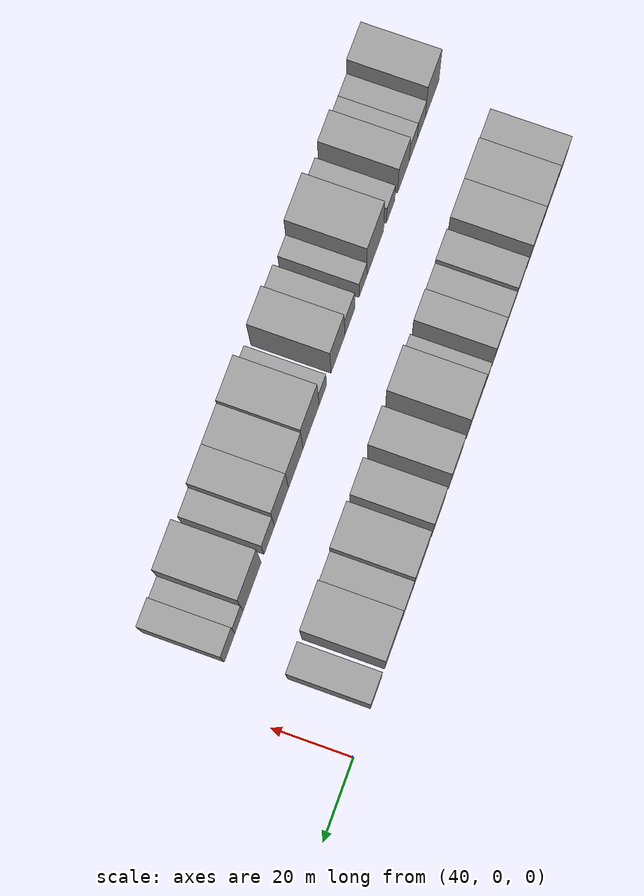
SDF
<sdf version="1.6">
 <world name="default">
  <model name="building_17">
   <static>1</static>
   <pose>50.0000 -145.6713 0 0.000000 0.000000 0.000000</pose>
   <link name="link">
    <pose>0 0 9.00 0 0 0</pose>
    <collision name="collision"><geometry><box><size>20.0000 8.4777 18.0000</size></box></geometry></collision>
    <visual name="visual">
     <cast_shadows>0</cast_shadows>
     <geometry><box><size>20.0000 8.4777 18.0000</size></box></geometry>
     <material>
      <script>
       <uri>model://grey_wall/materials/scripts</uri>
       <uri>model://grey_wall/materials/textures</uri>
       <name>vrc/grey_wall</name>
      </script>
     </material>
    </visual>
   </link>
  </model>
  <model name="building_18">
   <static>1</static>
   <pose>50.0000 -136.2820 0 0.000000 0.000000 0.000000</pose>
   <link name="link">
    <pose>0 0 10.50 0 0 0</pose>
    <collision name="collision"><geometry><box><size>20.0000 10.3009 21.0000</size></box></geometry></collision>
    <visual name="visual">
     <cast_shadows>0</cast_shadows>
     <geometry><box><size>20.0000 10.3009 21.0000</size></box></geometry>
     <material>
      <script>
       <uri>model://grey_wall/materials/scripts</uri>
       <uri>model://grey_wall/materials/textures</uri>
       <name>vrc/grey_wall</name>
      </script>
     </material>
    </visual>
   </link>
  </model>
  <model name="building_19">
   <static>1</static>
   <pose>50.0000 -126.2274 0 0.000000 0.000000 0.000000</pose>
   <link name="link">
    <pose>0 0 10.50 0 0 0</pose>
    <collision name="collision"><geometry><box><size>20.0000 9.8082 21.0000</size></box></geometry></collision>
    <visual name="visual">
     <cast_shadows>0</cast_shadows>
     <geometry><box><size>20.0000 9.8082 21.0000</size></box></geometry>
     <material>
      <script>
       <uri>model://grey_wall/materials/scripts</uri>
       <uri>model://grey_wall/materials/textures</uri>
       <name>vrc/grey_wall</name>
      </script>
     </material>
    </visual>
   </link>
  </model>
  <model name="building_20">
   <static>1</static>
   <pose>50.0000 -115.4698 0 0.000000 0.000000 0.000000</pose>
   <link name="link">
    <pose>0 0 9.00 0 0 0</pose>
    <collision name="collision"><geometry><box><size>20.0000 7.7070 18.0000</size></box></geometry></collision>
    <visual name="visual">
     <cast_shadows>0</cast_shadows>
     <geometry><box><size>20.0000 7.7070 18.0000</size></box></geometry>
     <material>
      <script>
       <uri>model://grey_wall/materials/scripts</uri>
       <uri>model://grey_wall/materials/textures</uri>
       <name>vrc/grey_wall</name>
      </script>
     </material>
    </visual>
   </link>
  </model>
  <model name="building_21">
   <static>1</static>
   <pose>50.0000 -107.9874 0 0.000000 0.000000 0.000000</pose>
   <link name="link">
    <pose>0 0 7.50 0 0 0</pose>
    <collision name="collision"><geometry><box><size>20.0000 7.2578 15.0000</size></box></geometry></collision>
    <visual name="visual">
     <cast_shadows>0</cast_shadows>
     <geometry><box><size>20.0000 7.2578 15.0000</size></box></geometry>
     <material>
      <script>
       <uri>model://grey_wall/materials/scripts</uri>
       <uri>model://grey_wall/materials/textures</uri>
       <name>vrc/grey_wall</name>
      </script>
     </material>
    </visual>
   </link>
  </model>
  <model name="building_22">
   <static>1</static>
   <pose>50.0000 -100.4647 0 0.000000 0.000000 0.000000</pose>
   <link name="link">
    <pose>0 0 9.00 0 0 0</pose>
    <collision name="collision"><geometry><box><size>20.0000 7.7876 18.0000</size></box></geometry></collision>
    <visual name="visual">
     <cast_shadows>0</cast_shadows>
     <geometry><box><size>20.0000 7.7876 18.0000</size></box></geometry>
     <material>
      <script>
       <uri>model://grey_wall/materials/scripts</uri>
       <uri>model://grey_wall/materials/textures</uri>
       <name>vrc/grey_wall</name>
      </script>
     </material>
    </visual>
   </link>
  </model>
  <model name="building_23">
   <static>1</static>
   <pose>50.0000 -91.7634 0 0.000000 0.000000 0.000000</pose>
   <link name="link">
    <pose>0 0 6.00 0 0 0</pose>
    <collision name="collision"><geometry><box><size>20.0000 5.6151 12.0000</size></box></geometry></collision>
    <visual name="visual">
     <cast_shadows>0</cast_shadows>
     <geometry><box><size>20.0000 5.6151 12.0000</size></box></geometry>
     <material>
      <script>
       <uri>model://grey_wall/materials/scripts</uri>
       <uri>model://grey_wall/materials/textures</uri>
       <name>vrc/grey_wall</name>
      </script>
     </material>
    </visual>
   </link>
  </model>
  <model name="building_24">
   <static>1</static>
   <pose>50.0000 -83.4513 0 0.000000 0.000000 0.000000</pose>
   <link name="link">
    <pose>0 0 12.00 0 0 0</pose>
    <collision name="collision"><geometry><box><size>20.0000 11.0090 24.0000</size></box></geometry></collision>
    <visual name="visual">
     <cast_shadows>0</cast_shadows>
     <geometry><box><size>20.0000 11.0090 24.0000</size></box></geometry>
     <material>
      <script>
       <uri>model://grey_wall/materials/scripts</uri>
       <uri>model://grey_wall/materials/textures</uri>
       <name>vrc/grey_wall</name>
      </script>
     </material>
    </visual>
   </link>
  </model>
  <model name="building_25">
   <static>1</static>
   <pose>50.0000 -70.2266 0 0.000000 0.000000 0.000000</pose>
   <link name="link">
    <pose>0 0 10.50 0 0 0</pose>
    <collision name="collision"><geometry><box><size>20.0000 9.4404 21.0000</size></box></geometry></collision>
    <visual name="visual">
     <cast_shadows>0</cast_shadows>
     <geometry><box><size>20.0000 9.4404 21.0000</size></box></geometry>
     <material>
      <script>
       <uri>model://grey_wall/materials/scripts</uri>
       <uri>model://grey_wall/materials/textures</uri>
       <name>vrc/grey_wall</name>
      </script>
     </material>
    </visual>
   </link>
  </model>
  <model name="building_26">
   <static>1</static>
   <pose>50.0000 -58.0610 0 0.000000 0.000000 0.000000</pose>
   <link name="link">
    <pose>0 0 10.50 0 0 0</pose>
    <collision name="collision"><geometry><box><size>20.0000 8.8907 21.0000</size></box></geometry></collision>
    <visual name="visual">
     <cast_shadows>0</cast_shadows>
     <geometry><box><size>20.0000 8.8907 21.0000</size></box></geometry>
     <material>
      <script>
       <uri>model://grey_wall/materials/scripts</uri>
       <uri>model://grey_wall/materials/textures</uri>
       <name>vrc/grey_wall</name>
      </script>
     </material>
    </visual>
   </link>
  </model>
  <model name="building_27">
   <static>1</static>
   <pose>50.0000 -46.1126 0 0.000000 0.000000 0.000000</pose>
   <link name="link">
    <pose>0 0 12.00 0 0 0</pose>
    <collision name="collision"><geometry><box><size>20.0000 11.0061 24.0000</size></box></geometry></collision>
    <visual name="visual">
     <cast_shadows>0</cast_shadows>
     <geometry><box><size>20.0000 11.0061 24.0000</size></box></geometry>
     <material>
      <script>
       <uri>model://grey_wall/materials/scripts</uri>
       <uri>model://grey_wall/materials/textures</uri>
       <name>vrc/grey_wall</name>
      </script>
     </material>
    </visual>
   </link>
  </model>
  <model name="building_28">
   <static>1</static>
   <pose>50.0000 -36.8444 0 0.000000 0.000000 0.000000</pose>
   <link name="link">
    <pose>0 0 9.00 0 0 0</pose>
    <collision name="collision"><geometry><box><size>20.0000 7.5302 18.0000</size></box></geometry></collision>
    <visual name="visual">
     <cast_shadows>0</cast_shadows>
     <geometry><box><size>20.0000 7.5302 18.0000</size></box></geometry>
     <material>
      <script>
       <uri>model://grey_wall/materials/scripts</uri>
       <uri>model://grey_wall/materials/textures</uri>
       <name>vrc/grey_wall</name>
      </script>
     </material>
    </visual>
   </link>
  </model>
  <model name="building_29">
   <static>1</static>
   <pose>50.0000 -27.2090 0 0.000000 0.000000 0.000000</pose>
   <link name="link">
    <pose>0 0 12.00 0 0 0</pose>
    <collision name="collision"><geometry><box><size>20.0000 11.7405 24.0000</size></box></geometry></collision>
    <visual name="visual">
     <cast_shadows>0</cast_shadows>
     <geometry><box><size>20.0000 11.7405 24.0000</size></box></geometry>
     <material>
      <script>
       <uri>model://grey_wall/materials/scripts</uri>
       <uri>model://grey_wall/materials/textures</uri>
       <name>vrc/grey_wall</name>
      </script>
     </material>
    </visual>
   </link>
  </model>
  <model name="building_30">
   <static>1</static>
   <pose>50.0000 -15.5463 0 0.000000 0.000000 0.000000</pose>
   <link name="link">
    <pose>0 0 9.00 0 0 0</pose>
    <collision name="collision"><geometry><box><size>20.0000 7.5850 18.0000</size></box></geometry></collision>
    <visual name="visual">
     <cast_shadows>0</cast_shadows>
     <geometry><box><size>20.0000 7.5850 18.0000</size></box></geometry>
     <material>
      <script>
       <uri>model://grey_wall/materials/scripts</uri>
       <uri>model://grey_wall/materials/textures</uri>
       <name>vrc/grey_wall</name>
      </script>
     </material>
    </visual>
   </link>
  </model>
  <model name="building_75">
   <static>1</static>
   <pose>85.0000 -153.7238 0 0.000000 0.000000 0.000000</pose>
   <link name="link">
    <pose>0 0 10.50 0 0 0</pose>
    <collision name="collision"><geometry><box><size>20.0000 9.7922 21.0000</size></box></geometry></collision>
    <visual name="visual">
     <cast_shadows>0</cast_shadows>
     <geometry><box><size>20.0000 9.7922 21.0000</size></box></geometry>
     <material>
      <script>
       <uri>model://grey_wall/materials/scripts</uri>
       <uri>model://grey_wall/materials/textures</uri>
       <name>vrc/grey_wall</name>
      </script>
     </material>
    </visual>
   </link>
  </model>
  <model name="building_76">
   <static>1</static>
   <pose>85.0000 -145.9030 0 0.000000 0.000000 0.000000</pose>
   <link name="link">
    <pose>0 0 6.00 0 0 0</pose>
    <collision name="collision"><geometry><box><size>20.0000 5.8493 12.0000</size></box></geometry></collision>
    <visual name="visual">
     <cast_shadows>0</cast_shadows>
     <geometry><box><size>20.0000 5.8493 12.0000</size></box></geometry>
     <material>
      <script>
       <uri>model://grey_wall/materials/scripts</uri>
       <uri>model://grey_wall/materials/textures</uri>
       <name>vrc/grey_wall</name>
      </script>
     </material>
    </visual>
   </link>
  </model>
  <model name="building_77">
   <static>1</static>
   <pose>85.0000 -140.0533 0 0.000000 0.000000 0.000000</pose>
   <link name="link">
    <pose>0 0 6.00 0 0 0</pose>
    <collision name="collision"><geometry><box><size>20.0000 5.8501 12.0000</size></box></geometry></collision>
    <visual name="visual">
     <cast_shadows>0</cast_shadows>
     <geometry><box><size>20.0000 5.8501 12.0000</size></box></geometry>
     <material>
      <script>
       <uri>model://grey_wall/materials/scripts</uri>
       <uri>model://grey_wall/materials/textures</uri>
       <name>vrc/grey_wall</name>
      </script>
     </material>
    </visual>
   </link>
  </model>
  <model name="building_78">
   <static>1</static>
   <pose>85.0000 -133.0357 0 0.000000 0.000000 0.000000</pose>
   <link name="link">
    <pose>0 0 9.00 0 0 0</pose>
    <collision name="collision"><geometry><box><size>20.0000 8.1851 18.0000</size></box></geometry></collision>
    <visual name="visual">
     <cast_shadows>0</cast_shadows>
     <geometry><box><size>20.0000 8.1851 18.0000</size></box></geometry>
     <material>
      <script>
       <uri>model://grey_wall/materials/scripts</uri>
       <uri>model://grey_wall/materials/textures</uri>
       <name>vrc/grey_wall</name>
      </script>
     </material>
    </visual>
   </link>
  </model>
  <model name="building_79">
   <static>1</static>
   <pose>85.0000 -123.9470 0 0.000000 0.000000 0.000000</pose>
   <link name="link">
    <pose>0 0 6.00 0 0 0</pose>
    <collision name="collision"><geometry><box><size>20.0000 5.9923 12.0000</size></box></geometry></collision>
    <visual name="visual">
     <cast_shadows>0</cast_shadows>
     <geometry><box><size>20.0000 5.9923 12.0000</size></box></geometry>
     <material>
      <script>
       <uri>model://grey_wall/materials/scripts</uri>
       <uri>model://grey_wall/materials/textures</uri>
       <name>vrc/grey_wall</name>
      </script>
     </material>
    </visual>
   </link>
  </model>
  <model name="building_80">
   <static>1</static>
   <pose>85.0000 -113.0246 0 0.000000 0.000000 0.000000</pose>
   <link name="link">
    <pose>0 0 12.00 0 0 0</pose>
    <collision name="collision"><geometry><box><size>20.0000 11.8526 24.0000</size></box></geometry></collision>
    <visual name="visual">
     <cast_shadows>0</cast_shadows>
     <geometry><box><size>20.0000 11.8526 24.0000</size></box></geometry>
     <material>
      <script>
       <uri>model://grey_wall/materials/scripts</uri>
       <uri>model://grey_wall/materials/textures</uri>
       <name>vrc/grey_wall</name>
      </script>
     </material>
    </visual>
   </link>
  </model>
  <model name="building_81">
   <static>1</static>
   <pose>85.0000 -104.3825 0 0.000000 0.000000 0.000000</pose>
   <link name="link">
    <pose>0 0 6.00 0 0 0</pose>
    <collision name="collision"><geometry><box><size>20.0000 5.4315 12.0000</size></box></geometry></collision>
    <visual name="visual">
     <cast_shadows>0</cast_shadows>
     <geometry><box><size>20.0000 5.4315 12.0000</size></box></geometry>
     <material>
      <script>
       <uri>model://grey_wall/materials/scripts</uri>
       <uri>model://grey_wall/materials/textures</uri>
       <name>vrc/grey_wall</name>
      </script>
     </material>
    </visual>
   </link>
  </model>
  <model name="building_82">
   <static>1</static>
   <pose>85.0000 -95.1820 0 0.000000 0.000000 0.000000</pose>
   <link name="link">
    <pose>0 0 7.50 0 0 0</pose>
    <collision name="collision"><geometry><box><size>20.0000 6.9696 15.0000</size></box></geometry></collision>
    <visual name="visual">
     <cast_shadows>0</cast_shadows>
     <geometry><box><size>20.0000 6.9696 15.0000</size></box></geometry>
     <material>
      <script>
       <uri>model://grey_wall/materials/scripts</uri>
       <uri>model://grey_wall/materials/textures</uri>
       <name>vrc/grey_wall</name>
      </script>
     </material>
    </visual>
   </link>
  </model>
  <model name="building_83">
   <static>1</static>
   <pose>85.0000 -86.9440 0 0.000000 0.000000 0.000000</pose>
   <link name="link">
    <pose>0 0 10.50 0 0 0</pose>
    <collision name="collision"><geometry><box><size>20.0000 9.5066 21.0000</size></box></geometry></collision>
    <visual name="visual">
     <cast_shadows>0</cast_shadows>
     <geometry><box><size>20.0000 9.5066 21.0000</size></box></geometry>
     <material>
      <script>
       <uri>model://grey_wall/materials/scripts</uri>
       <uri>model://grey_wall/materials/textures</uri>
       <name>vrc/grey_wall</name>
      </script>
     </material>
    </visual>
   </link>
  </model>
  <model name="building_84">
   <static>1</static>
   <pose>85.0000 -76.5993 0 0.000000 0.000000 0.000000</pose>
   <link name="link">
    <pose>0 0 6.00 0 0 0</pose>
    <collision name="collision"><geometry><box><size>20.0000 5.1828 12.0000</size></box></geometry></collision>
    <visual name="visual">
     <cast_shadows>0</cast_shadows>
     <geometry><box><size>20.0000 5.1828 12.0000</size></box></geometry>
     <material>
      <script>
       <uri>model://grey_wall/materials/scripts</uri>
       <uri>model://grey_wall/materials/textures</uri>
       <name>vrc/grey_wall</name>
      </script>
     </material>
    </visual>
   </link>
  </model>
  <model name="building_85">
   <static>1</static>
   <pose>85.0000 -68.5013 0 0.000000 0.000000 0.000000</pose>
   <link name="link">
    <pose>0 0 12.00 0 0 0</pose>
    <collision name="collision"><geometry><box><size>20.0000 11.0131 24.0000</size></box></geometry></collision>
    <visual name="visual">
     <cast_shadows>0</cast_shadows>
     <geometry><box><size>20.0000 11.0131 24.0000</size></box></geometry>
     <material>
      <script>
       <uri>model://grey_wall/materials/scripts</uri>
       <uri>model://grey_wall/materials/textures</uri>
       <name>vrc/grey_wall</name>
      </script>
     </material>
    </visual>
   </link>
  </model>
  <model name="building_86">
   <static>1</static>
   <pose>85.0000 -58.0764 0 0.000000 0.000000 0.000000</pose>
   <link name="link">
    <pose>0 0 10.50 0 0 0</pose>
    <collision name="collision"><geometry><box><size>20.0000 9.8368 21.0000</size></box></geometry></collision>
    <visual name="visual">
     <cast_shadows>0</cast_shadows>
     <geometry><box><size>20.0000 9.8368 21.0000</size></box></geometry>
     <material>
      <script>
       <uri>model://grey_wall/materials/scripts</uri>
       <uri>model://grey_wall/materials/textures</uri>
       <name>vrc/grey_wall</name>
      </script>
     </material>
    </visual>
   </link>
  </model>
  <model name="building_87">
   <static>1</static>
   <pose>85.0000 -48.4231 0 0.000000 0.000000 0.000000</pose>
   <link name="link">
    <pose>0 0 10.50 0 0 0</pose>
    <collision name="collision"><geometry><box><size>20.0000 9.4697 21.0000</size></box></geometry></collision>
    <visual name="visual">
     <cast_shadows>0</cast_shadows>
     <geometry><box><size>20.0000 9.4697 21.0000</size></box></geometry>
     <material>
      <script>
       <uri>model://grey_wall/materials/scripts</uri>
       <uri>model://grey_wall/materials/textures</uri>
       <name>vrc/grey_wall</name>
      </script>
     </material>
    </visual>
   </link>
  </model>
  <model name="building_88">
   <static>1</static>
   <pose>85.0000 -40.2184 0 0.000000 0.000000 0.000000</pose>
   <link name="link">
    <pose>0 0 7.50 0 0 0</pose>
    <collision name="collision"><geometry><box><size>20.0000 6.9398 15.0000</size></box></geometry></collision>
    <visual name="visual">
     <cast_shadows>0</cast_shadows>
     <geometry><box><size>20.0000 6.9398 15.0000</size></box></geometry>
     <material>
      <script>
       <uri>model://grey_wall/materials/scripts</uri>
       <uri>model://grey_wall/materials/textures</uri>
       <name>vrc/grey_wall</name>
      </script>
     </material>
    </visual>
   </link>
  </model>
  <model name="building_89">
   <static>1</static>
   <pose>85.0000 -28.8051 0 0.000000 0.000000 0.000000</pose>
   <link name="link">
    <pose>0 0 12.00 0 0 0</pose>
    <collision name="collision"><geometry><box><size>20.0000 11.8869 24.0000</size></box></geometry></collision>
    <visual name="visual">
     <cast_shadows>0</cast_shadows>
     <geometry><box><size>20.0000 11.8869 24.0000</size></box></geometry>
     <material>
      <script>
       <uri>model://grey_wall/materials/scripts</uri>
       <uri>model://grey_wall/materials/textures</uri>
       <name>vrc/grey_wall</name>
      </script>
     </material>
    </visual>
   </link>
  </model>
  <model name="building_90">
   <static>1</static>
   <pose>85.0000 -20.1417 0 0.000000 0.000000 0.000000</pose>
   <link name="link">
    <pose>0 0 6.00 0 0 0</pose>
    <collision name="collision"><geometry><box><size>20.0000 5.4399 12.0000</size></box></geometry></collision>
    <visual name="visual">
     <cast_shadows>0</cast_shadows>
     <geometry><box><size>20.0000 5.4399 12.0000</size></box></geometry>
     <material>
      <script>
       <uri>model://grey_wall/materials/scripts</uri>
       <uri>model://grey_wall/materials/textures</uri>
       <name>vrc/grey_wall</name>
      </script>
     </material>
    </visual>
   </link>
  </model>
  <model name="building_91">
   <static>1</static>
   <pose>85.0000 -13.9408 0 0.000000 0.000000 0.000000</pose>
   <link name="link">
    <pose>0 0 7.50 0 0 0</pose>
    <collision name="collision"><geometry><box><size>20.0000 6.9619 15.0000</size></box></geometry></collision>
    <visual name="visual">
     <cast_shadows>0</cast_shadows>
     <geometry><box><size>20.0000 6.9619 15.0000</size></box></geometry>
     <material>
      <script>
       <uri>model://grey_wall/materials/scripts</uri>
       <uri>model://grey_wall/materials/textures</uri>
       <name>vrc/grey_wall</name>
      </script>
     </material>
    </visual>
   </link>
  </model>
 </world>
</sdf>
